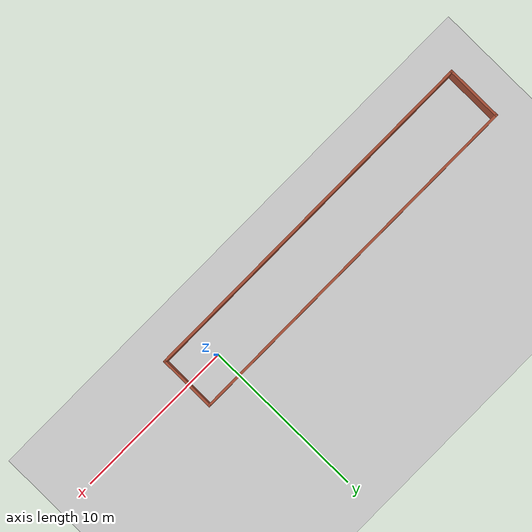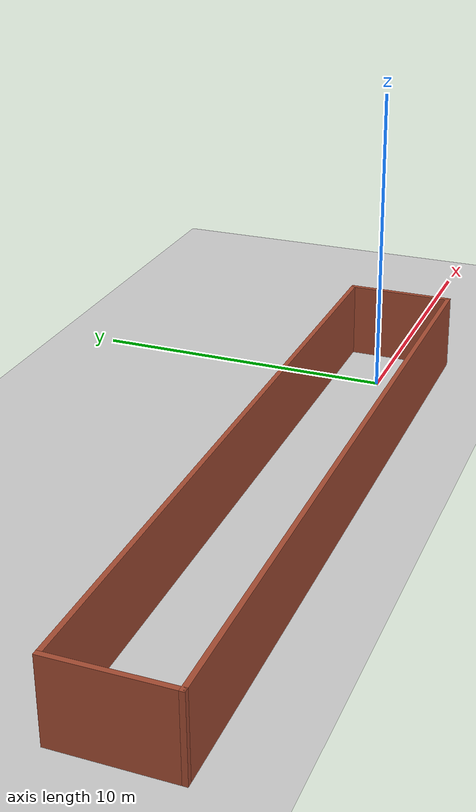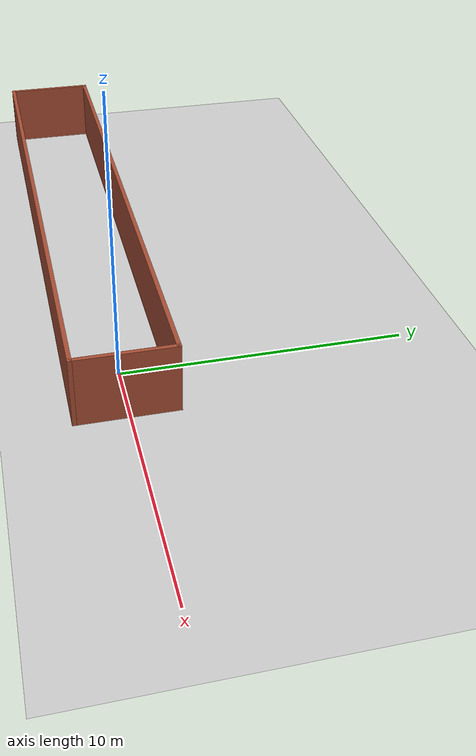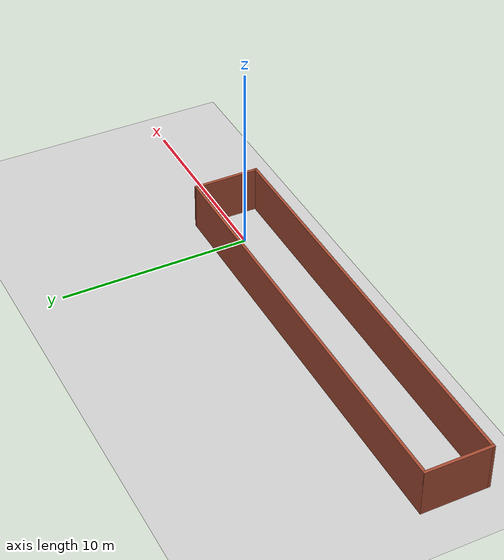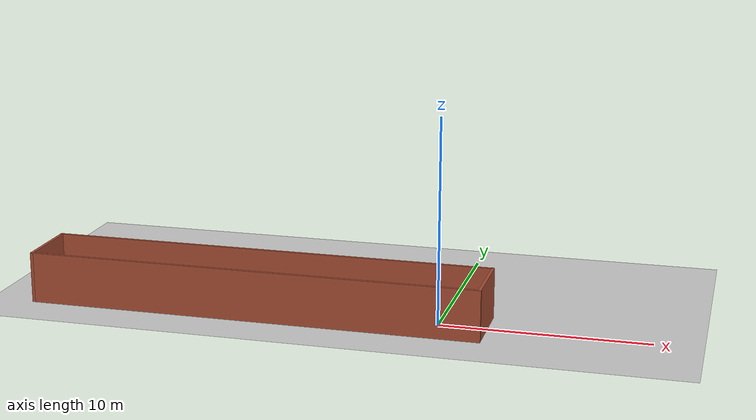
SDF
<sdf version="1.7">
 <world name="default">
  <light name="sun" type="directional">
   <pose>0 0 10 0 -0 0</pose>
   <diffuse>0.8 0.8 0.8 1</diffuse>
   <specular>0.2 0.2 0.2 1</specular>
   <attenuation>
    <range>1000</range>
    <constant>0.9</constant>
    <linear>0.01</linear>
    <quadratic>0.001</quadratic>
   </attenuation>
   <direction>-0.5 0.1 -0.9</direction>
   <spot><inner_angle>0</inner_angle><outer_angle>0</outer_angle><falloff>0</falloff></spot>
  </light>
  <plugin name="ActorPosesPlugin" filename="libActorPosesPlugin.so"/>
  <model name="ground_plane">
   <static>1</static>
   <link name="link">
    <collision name="collision">
     <geometry><plane><normal>0 0 1</normal><size>100 100</size></plane></geometry>
     <surface><friction><ode><mu>100</mu><mu2>50</mu2></ode></friction></surface>
    </collision>
    <visual name="visual">
     <cast_shadows>0</cast_shadows>
     <geometry><plane><normal>0 0 1</normal><size>100 100</size></plane></geometry>
     <material>
      <script><uri>file://media/materials/scripts/gazebo.material</uri><name>Gazebo/Grey</name></script>
     </material>
    </visual>
   </link>
  </model>
  <gravity>0 0 -9.8</gravity>
  <magnetic_field>6e-06 2.3e-05 -4.2e-05</magnetic_field>
  <atmosphere type="adiabatic"/>
  <physics name="default_physics" default="0" type="ode">
   <max_step_size>0.001</max_step_size>
   <real_time_factor>1</real_time_factor>
   <real_time_update_rate>1000</real_time_update_rate>
  </physics>
  <scene><ambient>0.4 0.4 0.4 1</ambient><background>0.7 0.7 0.7 1</background><shadows>1</shadows></scene>
  <spherical_coordinates>
   <surface_model>EARTH_WGS84</surface_model>
   <latitude_deg>0</latitude_deg>
   <longitude_deg>0</longitude_deg>
   <elevation>0</elevation>
   <heading_deg>0</heading_deg>
  </spherical_coordinates>
  <model name="wider_hallway">
   <pose>-8.79 -0.07751 0 0 -0 0</pose>
   <link name="Wall_10">
    <collision name="Wall_10_Collision">
     <geometry><box><size>22.25 0.15 2.5</size></box></geometry>
     <pose>0 0 1.25 0 -0 0</pose>
    </collision>
    <visual name="Wall_10_Visual">
     <pose>0 0 1.25 0 -0 0</pose>
     <geometry><box><size>22.25 0.15 2.5</size></box></geometry>
     <material>
      <script><uri>file://media/materials/scripts/gazebo.material</uri><name>Gazebo/Bricks</name></script>
      <ambient>1 1 1 1</ambient>
     </material>
     <meta><layer>0</layer></meta>
    </visual>
    <pose>0 1.69249 0 0 -0 0</pose>
   </link>
   <link name="Wall_15">
    <collision name="Wall_15_Collision">
     <geometry><box><size>3.53498 0.15 2.5</size></box></geometry>
     <pose>0 0 1.25 0 -0 0</pose>
    </collision>
    <visual name="Wall_15_Visual">
     <pose>0 0 1.25 0 -0 0</pose>
     <geometry><box><size>3.53498 0.15 2.5</size></box></geometry>
     <material>
      <script><uri>file://media/materials/scripts/gazebo.material</uri><name>Gazebo/Bricks</name></script>
      <ambient>1 1 1 1</ambient>
     </material>
     <meta><layer>0</layer></meta>
    </visual>
    <pose>11.05 0 0 0 -0 -1.5708</pose>
   </link>
   <link name="Wall_6">
    <collision name="Wall_6_Collision">
     <geometry><box><size>22.25 0.15 2.5</size></box></geometry>
     <pose>0 0 1.25 0 -0 0</pose>
    </collision>
    <visual name="Wall_6_Visual">
     <pose>0 0 1.25 0 -0 0</pose>
     <geometry><box><size>22.25 0.15 2.5</size></box></geometry>
     <material>
      <script><uri>file://media/materials/scripts/gazebo.material</uri><name>Gazebo/Bricks</name></script>
      <ambient>1 1 1 1</ambient>
     </material>
     <meta><layer>0</layer></meta>
    </visual>
    <pose>0 -1.69249 0 0 -0 3.14159</pose>
   </link>
   <link name="Wall_7">
    <collision name="Wall_7_Collision">
     <geometry><box><size>3.53498 0.15 2.5</size></box></geometry>
     <pose>0 0 1.25 0 -0 0</pose>
    </collision>
    <visual name="Wall_7_Visual">
     <pose>0 0 1.25 0 -0 0</pose>
     <geometry><box><size>3.53498 0.15 2.5</size></box></geometry>
     <material>
      <script><uri>file://media/materials/scripts/gazebo.material</uri><name>Gazebo/Bricks</name></script>
      <ambient>1 1 1 1</ambient>
     </material>
     <meta><layer>0</layer></meta>
    </visual>
    <pose>-11.05 0 0 0 -0 1.5708</pose>
   </link>
   <static>1</static>
  </model>
 </world>
</sdf>
